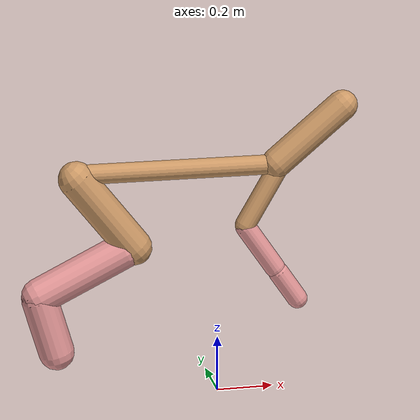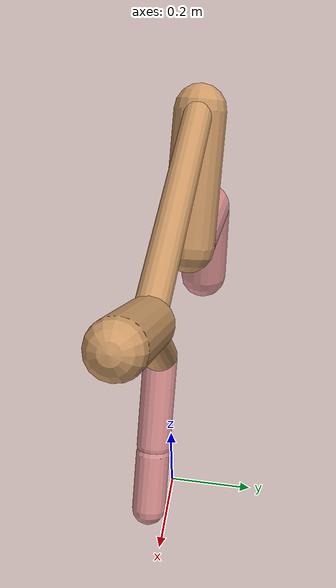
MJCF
<mujoco model="cheetah">
  <compiler angle="radian" coordinate="local" inertiafromgeom="true" settotalmass="14" />
  <default>
    <joint armature=".1" damping=".01" limited="true" solimplimit="0 .8 .03" solreflimit=".02 1" stiffness="8" />
    <geom conaffinity="0" condim="3" contype="1" friction="0.8 .1 .1" rgba="0.8 0.6 .4 1" solimp="0.0 0.8 0.01" solref="0.02 1" />
    <motor ctrllimited="true" ctrlrange="-1 1" />
  </default>
  <size nstack="300000" nuser_geom="1" />
  <option gravity="0 0 -9.81" timestep="0.01" />
  <worldbody>
    <body name="torso" pos="0.0 0.0 0.8188370006309148">
      <joint armature="0" axis="1 0 0" damping="0" limited="false" name="ignorex" pos="0 0 0" stiffness="0" type="slide" />
      <joint armature="0" axis="0 0 1" damping="0" limited="false" name="ignorez" pos="0 0 0" stiffness="0" type="slide" />
      <joint armature="0" axis="0 1 0" damping="0" limited="false" name="ignorey" pos="0 0 0" stiffness="0" type="hinge" />
      <geom fromto="-0.5 0.0 0.0 0.21898886090954273 0.0 0.0" name="torso" size="0.03389323930878087" type="capsule" />
      <geom axisangle="0 1 0 .87" name="head" pos="0.3189888609095427 0.0 0.1" size="0.05249079576370954 0.15" type="capsule" />

      <body name="bthigh" pos="-.5 0 0">
        <joint axis="0 1 0" damping="6" name="bthigh" pos="0 0 0" range="-.52 1.05" stiffness="240" type="hinge" />
        <geom axisangle="0 1 0 -3.8" name="bthigh" pos="0.10890351586475146 0.0 -0.1415745706241769" size="0.062419127665214416 0.15960285177244293" type="capsule" />
        <body name="bshin" pos="0.1778070317295029 0.0 -0.27314914124835377">
          <joint axis="0 1 0" damping="4.5" name="bshin" pos="0 0 0" range="-.785 .785" stiffness="180" type="hinge" />
          <geom axisangle="0 1 0 -2.03" name="bshin" pos="-0.15351157347387684 0.0 -0.07675578673693842" rgba="0.9 0.6 0.6 1" size="0.062419127665214416 0.1651063983852858" type="capsule" />
          <body name="bfoot" pos="-0.3070231469477537 0.0 -0.15351157347387684">
            <joint axis="0 1 0" damping="3" name="bfoot" pos="0 0 0" range="-.4 .785" stiffness="120" type="hinge" />
            <geom axisangle="0 1 0 -.27" name="bfoot" pos="0.032797116229690476 0.0 -0.10604400914266587" rgba="0.9 0.6 0.6 1" size="0.062419127665214416 0.10346667632144577" type="capsule" />
            <inertial mass="10" />
          </body>
        </body>
      </body>
      <body name="fthigh" pos="0.21898886090954273 0.0 0.0">
        <joint axis="0 1 0" damping="4.5" name="fthigh" pos="0 0 0" range="-1.5 0.8" stiffness="180" type="hinge" />
        <geom axisangle="0 1 0 .52" name="fthigh" pos="-0.06324909818993803 0.0 -0.10842702546846518" size="0.035777943188120415 0.11960192496077696" type="capsule" />
        <body name="fshin" pos="-0.12649819637987605 0.0 -0.21685405093693036">
          <joint axis="0 1 0" damping="3" name="fshin" pos="0 0 0" range="-1.2 1.1" stiffness="120" type="hinge" />
          <geom axisangle="0 1 0 -.6" name="fshin" pos="0.05874803521979492 0.0 -0.0813434333812545" rgba="0.9 0.6 0.6 1" size="0.035777943188120415 0.09532183493114553" type="capsule" />
          <body name="ffoot" pos="0.11749607043958984 0.0 -0.162686866762509">
            <joint axis="0 1 0" damping="1.5" name="ffoot" pos="0 0 0" range="-3.1 -0.3" stiffness="60" type="hinge" />
            <geom axisangle="0 1 0 -.6" name="ffoot" pos="0.04118678379660644 0.0 -0.06406833035027669" rgba="0.9 0.6 0.6 1" size="0.035777943188120415 0.06294838155830366" type="capsule" />
            <inertial mass="10" />
          </body>
        </body>
      </body>
    </body>
  </worldbody>
  <actuator>
    <motor gear="120" joint="bthigh" name="bthigh" />
    <motor gear="90" joint="bshin" name="bshin" />
    <motor gear="60" joint="bfoot" name="bfoot" />
    <motor gear="120" joint="fthigh" name="fthigh" />
    <motor gear="60" joint="fshin" name="fshin" />
    <motor gear="30" joint="ffoot" name="ffoot" />
  </actuator>
</mujoco>
